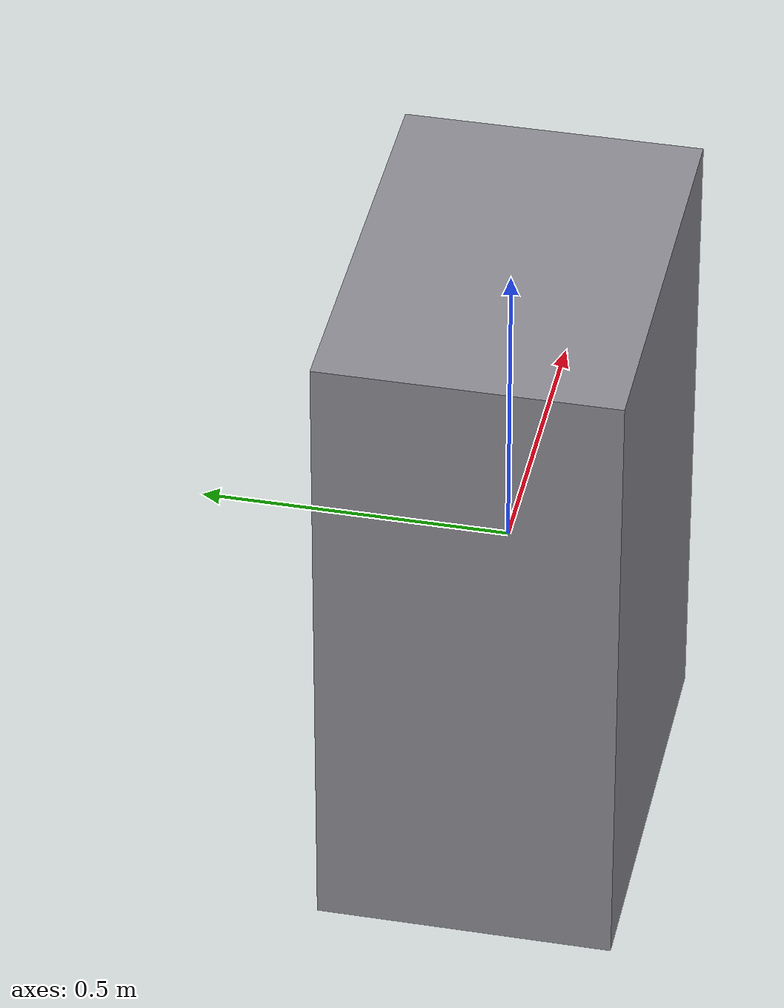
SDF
<?xml version="1.0"?>
<sdf version="1.6">
  <model name="InstrumentCart2">
    <static>true</static>
    <link name="link">
      <collision name="col">
        <geometry>
          <box>
            <size>0.7 0.48 1.08</size>
          </box>
        </geometry>
      </collision>
      <visual name="vis">
        <geometry>
          <box>
            <size>0.7 0.48 1.08</size>
          </box>
        </geometry>
        <material>
          <ambient>0.55 0.55 0.58 1</ambient>
          <diffuse>0.55 0.55 0.58 1</diffuse>
        </material>
      </visual>
    </link>
  </model>
</sdf>
